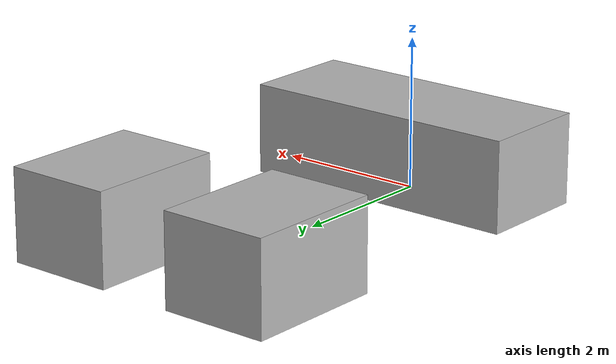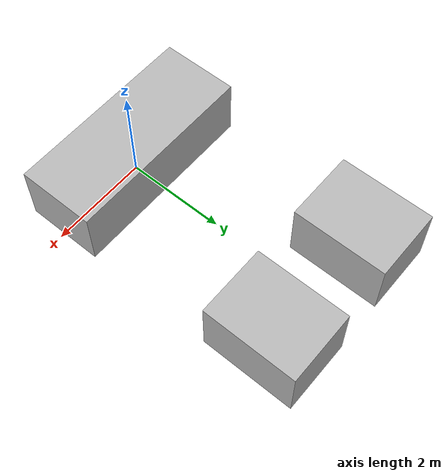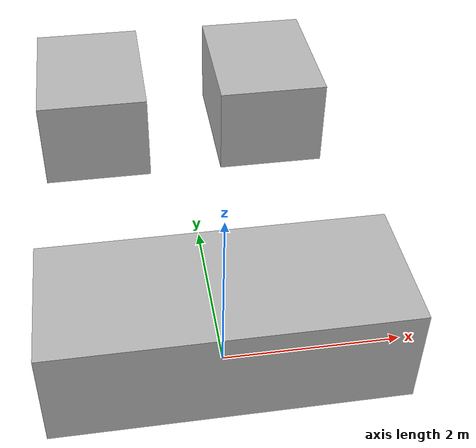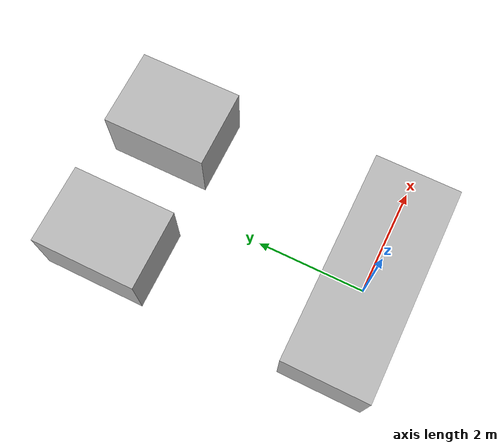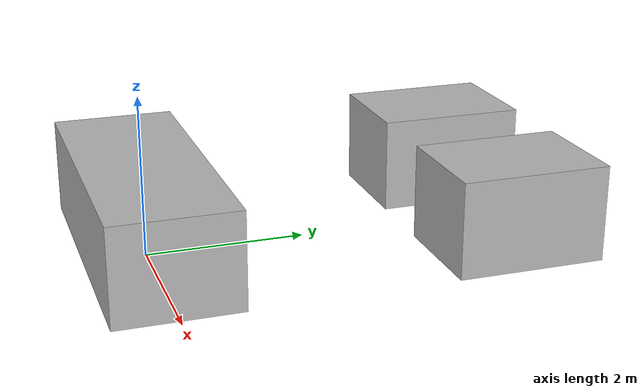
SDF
<?xml version="1.0" ?>
<sdf version="1.6">
  <model name="tue.library/cartographics">
    <link name="1">
      <collision name="1">
        <geometry>
          <box>
            <size>3.82 1.525 1.2</size>
          </box>
        </geometry>
        <name>1</name>
      </collision>
      <visual name="1">
        <geometry>
          <box>
            <size>3.82 1.525 1.2</size>
          </box>
        </geometry>
        <name>1</name>
      </visual>
      <pose>0 0 0.6 0 0 0</pose>
      <name>1</name>
    </link>
    <link name="2">
      <collision name="2">
        <geometry>
          <box>
            <size>1.42 1.86 1.2</size>
          </box>
        </geometry>
        <name>2</name>
      </collision>
      <visual name="2">
        <geometry>
          <box>
            <size>1.42 1.86 1.2</size>
          </box>
        </geometry>
        <name>2</name>
      </visual>
      <pose>1.2 4.26 0.6 0 0 0</pose>
      <name>2</name>
    </link>
    <link name="3">
      <collision name="3">
        <geometry>
          <box>
            <size>1.42 1.86 1.2</size>
          </box>
        </geometry>
        <name>3</name>
      </collision>
      <visual name="3">
        <geometry>
          <box>
            <size>1.42 1.86 1.2</size>
          </box>
        </geometry>
        <name>3</name>
      </visual>
      <pose>-1.2 4.26 0.6 0 0 0</pose>
      <name>3</name>
    </link>
    <static>true</static>
    <name>tue.library/cartographics</name>
  </model>
</sdf>
